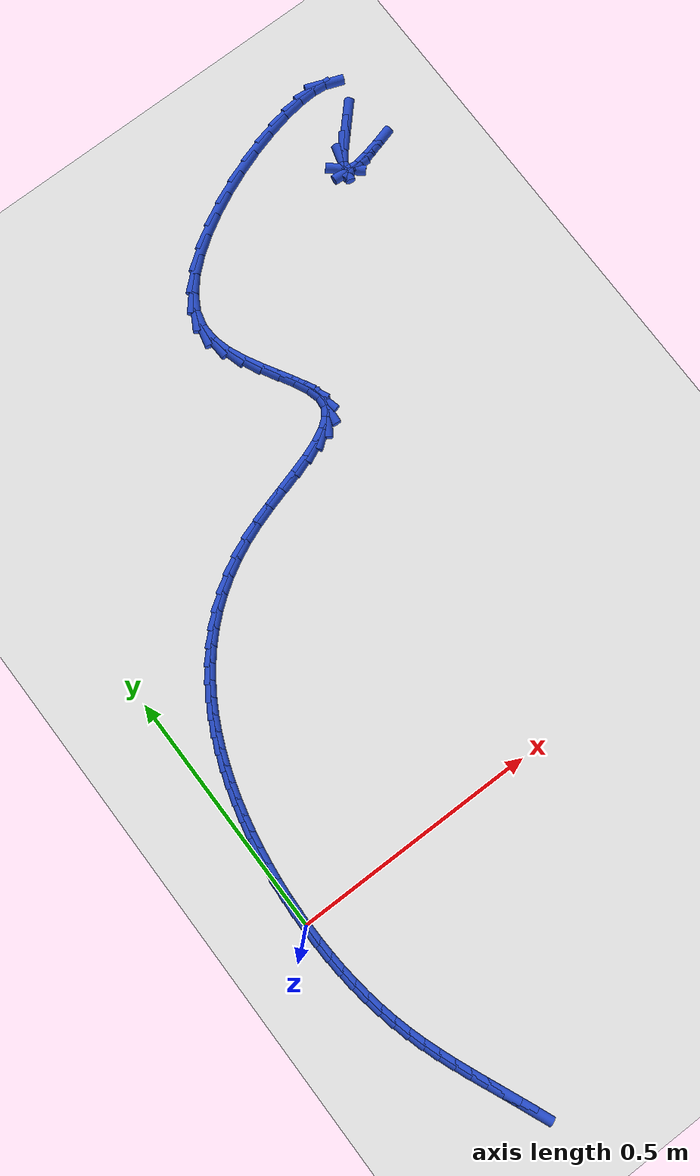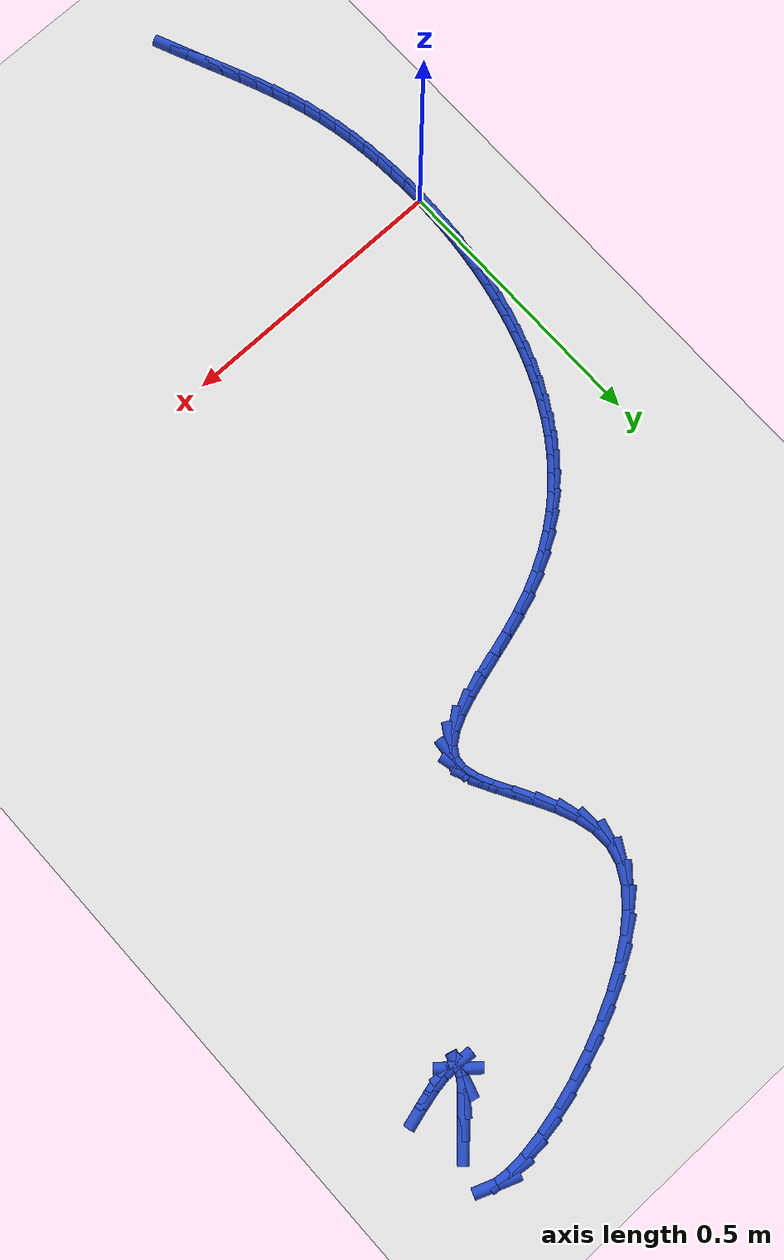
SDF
<sdf version="1.6">
 <world name="default">
  <model name="ground_plane">
   <static>1</static>
   <link name="link">
    <collision name="collision">
     <geometry><plane><normal>0 0 1</normal><size>100 100</size></plane></geometry>
     <surface><friction><ode><mu>100</mu><mu2>50</mu2></ode></friction></surface>
    </collision>
    <visual name="visual">
     <cast_shadows>0</cast_shadows>
     <geometry><plane><normal>0 0 1</normal><size>100 100</size></plane></geometry>
     <material>
      <script><uri>file://media/materials/scripts/gazebo.material</uri><name>Gazebo/WhiteGlow</name></script>
     </material>
    </visual>
   </link>
  </model>
  <model name="line">
   <link name="link_0">
    <pose>0.0 -3.469446951953614e-17 0.01 0 1.57 1.551347622708045</pose>
    <collision name="collision">
     <geometry><cylinder><radius>0.01</radius><length>0.08</length></cylinder></geometry>
    </collision>
    <visual name="visual">
     <material>
      <script><name>Gazebo/Blue</name><uri>file://media/materials/scripts/gazebo.material</uri></script>
     </material>
     <geometry><cylinder><radius>0.01</radius><length>0.08</length></cylinder></geometry>
    </visual>
   </link>
   <link name="link_1">
    <pose>0.0006310632778626028 0.032443483434008775 0.01 0 1.57 1.5214623332307498</pose>
    <collision name="collision">
     <geometry><cylinder><radius>0.01</radius><length>0.08</length></cylinder></geometry>
    </collision>
    <visual name="visual">
     <material>
      <script><name>Gazebo/Blue</name><uri>file://media/materials/scripts/gazebo.material</uri></script>
     </material>
     <geometry><cylinder><radius>0.01</radius><length>0.08</length></cylinder></geometry>
    </visual>
   </link>
   <link name="link_2">
    <pose>0.00222877448602239 0.06480280992995505 0.01 0 1.57 1.490794480789097</pose>
    <collision name="collision">
     <geometry><cylinder><radius>0.01</radius><length>0.08</length></cylinder></geometry>
    </collision>
    <visual name="visual">
     <material>
      <script><name>Gazebo/Blue</name><uri>file://media/materials/scripts/gazebo.material</uri></script>
     </material>
     <geometry><cylinder><radius>0.01</radius><length>0.08</length></cylinder></geometry>
    </visual>
   </link>
   <link name="link_3">
    <pose>0.004814420883808927 0.0970536625192309 0.01 0 1.57 1.4593335294211989</pose>
    <collision name="collision">
     <geometry><cylinder><radius>0.01</radius><length>0.08</length></cylinder></geometry>
    </collision>
    <visual name="visual">
     <material>
      <script><name>Gazebo/Blue</name><uri>file://media/materials/scripts/gazebo.material</uri></script>
     </material>
     <geometry><cylinder><radius>0.01</radius><length>0.08</length></cylinder></geometry>
    </visual>
   </link>
   <link name="link_4">
    <pose>0.00840928973055177 0.12917172423322837 0.01 0 1.57 1.4270744777898414</pose>
    <collision name="collision">
     <geometry><cylinder><radius>0.01</radius><length>0.08</length></cylinder></geometry>
    </collision>
    <visual name="visual">
     <material>
      <script><name>Gazebo/Blue</name><uri>file://media/materials/scripts/gazebo.material</uri></script>
     </material>
     <geometry><cylinder><radius>0.01</radius><length>0.08</length></cylinder></geometry>
    </visual>
   </link>
   <link name="link_5">
    <pose>0.013034668285580472 0.16113267810333953 0.01 0 1.57 1.394018565833373</pose>
    <collision name="collision">
     <geometry><cylinder><radius>0.01</radius><length>0.08</length></cylinder></geometry>
    </collision>
    <visual name="visual">
     <material>
      <script><name>Gazebo/Blue</name><uri>file://media/materials/scripts/gazebo.material</uri></script>
     </material>
     <geometry><cylinder><radius>0.01</radius><length>0.08</length></cylinder></geometry>
    </visual>
   </link>
   <link name="link_6">
    <pose>0.018711843808224587 0.19291220716095636 0.01 0 1.57 1.3601739711808627</pose>
    <collision name="collision">
     <geometry><cylinder><radius>0.01</radius><length>0.08</length></cylinder></geometry>
    </collision>
    <visual name="visual">
     <material>
      <script><name>Gazebo/Blue</name><uri>file://media/materials/scripts/gazebo.material</uri></script>
     </material>
     <geometry><cylinder><radius>0.01</radius><length>0.08</length></cylinder></geometry>
    </visual>
   </link>
   <link name="link_7">
    <pose>0.025462103557813684 0.22448599443747105 0.01 0 1.57 1.3255514020256949</pose>
    <collision name="collision">
     <geometry><cylinder><radius>0.01</radius><length>0.08</length></cylinder></geometry>
    </collision>
    <visual name="visual">
     <material>
      <script><name>Gazebo/Blue</name><uri>file://media/materials/scripts/gazebo.material</uri></script>
     </material>
     <geometry><cylinder><radius>0.01</radius><length>0.08</length></cylinder></geometry>
    </visual>
   </link>
   <link name="link_8">
    <pose>0.03330686267905719 0.2558295598063921 0.01 0 1.57 1.2893873009036945</pose>
    <collision name="collision">
     <geometry><cylinder><radius>0.01</radius><length>0.08</length></cylinder></geometry>
    </collision>
    <visual name="visual">
     <material>
      <script><name>Gazebo/Blue</name><uri>file://media/materials/scripts/gazebo.material</uri></script>
     </material>
     <geometry><cylinder><radius>0.01</radius><length>0.08</length></cylinder></geometry>
    </visual>
   </link>
   <link name="link_9">
    <pose>0.04228690338637428 0.28689371437386546 0.01 0 1.57 1.2499902859856358</pose>
    <collision name="collision">
     <geometry><cylinder><radius>0.01</radius><length>0.08</length></cylinder></geometry>
    </collision>
    <visual name="visual">
     <material>
      <script><name>Gazebo/Blue</name><uri>file://media/materials/scripts/gazebo.material</uri></script>
     </material>
     <geometry><cylinder><radius>0.01</radius><length>0.08</length></cylinder></geometry>
    </visual>
   </link>
   <link name="link_10">
    <pose>0.0524829219104767 0.31757834640856647 0.01 0 1.57 1.2070098560567881</pose>
    <collision name="collision">
     <geometry><cylinder><radius>0.01</radius><length>0.08</length></cylinder></geometry>
    </collision>
    <visual name="visual">
     <material>
      <script><name>Gazebo/Blue</name><uri>file://media/materials/scripts/gazebo.material</uri></script>
     </material>
     <geometry><cylinder><radius>0.01</radius><length>0.08</length></cylinder></geometry>
    </visual>
   </link>
   <link name="link_11">
    <pose>0.06398053857860247 0.34777706195076147 0.01 0 1.57 1.1603143816222603</pose>
    <collision name="collision">
     <geometry><cylinder><radius>0.01</radius><length>0.08</length></cylinder></geometry>
    </collision>
    <visual name="visual">
     <material>
      <script><name>Gazebo/Blue</name><uri>file://media/materials/scripts/gazebo.material</uri></script>
     </material>
     <geometry><cylinder><radius>0.01</radius><length>0.08</length></cylinder></geometry>
    </visual>
   </link>
   <link name="link_12">
    <pose>0.07686537371798967 0.37738346704071657 0.01 0 1.57 1.109813871606569</pose>
    <collision name="collision">
     <geometry><cylinder><radius>0.01</radius><length>0.08</length></cylinder></geometry>
    </collision>
    <visual name="visual">
     <material>
      <script><name>Gazebo/Blue</name><uri>file://media/materials/scripts/gazebo.material</uri></script>
     </material>
     <geometry><cylinder><radius>0.01</radius><length>0.08</length></cylinder></geometry>
    </visual>
   </link>
   <link name="link_13">
    <pose>0.09122304765587627 0.4062911677186979 0.01 0 1.57 1.0554810074321803</pose>
    <collision name="collision">
     <geometry><cylinder><radius>0.01</radius><length>0.08</length></cylinder></geometry>
    </collision>
    <visual name="visual">
     <material>
      <script><name>Gazebo/Blue</name><uri>file://media/materials/scripts/gazebo.material</uri></script>
     </material>
     <geometry><cylinder><radius>0.01</radius><length>0.08</length></cylinder></geometry>
    </visual>
   </link>
   <link name="link_14">
    <pose>0.10713918071950027 0.4343937700249714 0.01 0 1.57 0.9973742962797819</pose>
    <collision name="collision">
     <geometry><cylinder><radius>0.01</radius><length>0.08</length></cylinder></geometry>
    </collision>
    <visual name="visual">
     <material>
      <script><name>Gazebo/Blue</name><uri>file://media/materials/scripts/gazebo.material</uri></script>
     </material>
     <geometry><cylinder><radius>0.01</radius><length>0.08</length></cylinder></geometry>
    </visual>
   </link>
   <link name="link_15">
    <pose>0.12469939323609969 0.46158487999980335 0.01 0 1.57 0.9356611636134483</pose>
    <collision name="collision">
     <geometry><cylinder><radius>0.01</radius><length>0.08</length></cylinder></geometry>
    </collision>
    <visual name="visual">
     <material>
      <script><name>Gazebo/Blue</name><uri>file://media/materials/scripts/gazebo.material</uri></script>
     </material>
     <geometry><cylinder><radius>0.01</radius><length>0.08</length></cylinder></geometry>
    </visual>
   </link>
   <link name="link_16">
    <pose>0.1439893055329126 0.48775810368345984 0.01 0 1.57 0.8706375805706945</pose>
    <collision name="collision">
     <geometry><cylinder><radius>0.01</radius><length>0.08</length></cylinder></geometry>
    </collision>
    <visual name="visual">
     <material>
      <script><name>Gazebo/Blue</name><uri>file://media/materials/scripts/gazebo.material</uri></script>
     </material>
     <geometry><cylinder><radius>0.01</radius><length>0.08</length></cylinder></geometry>
    </visual>
   </link>
   <link name="link_17">
    <pose>0.165094537937177 0.5128070471162071 0.01 0 1.57 0.8027398537066995</pose>
    <collision name="collision">
     <geometry><cylinder><radius>0.01</radius><length>0.08</length></cylinder></geometry>
    </collision>
    <visual name="visual">
     <material>
      <script><name>Gazebo/Blue</name><uri>file://media/materials/scripts/gazebo.material</uri></script>
     </material>
     <geometry><cylinder><radius>0.01</radius><length>0.08</length></cylinder></geometry>
    </visual>
   </link>
   <link name="link_18">
    <pose>0.18810071077613086 0.536625316338311 0.01 0 1.57 0.7325440356069635</pose>
    <collision name="collision">
     <geometry><cylinder><radius>0.01</radius><length>0.08</length></cylinder></geometry>
    </collision>
    <visual name="visual">
     <material>
      <script><name>Gazebo/Blue</name><uri>file://media/materials/scripts/gazebo.material</uri></script>
     </material>
     <geometry><cylinder><radius>0.01</radius><length>0.08</length></cylinder></geometry>
    </visual>
   </link>
   <link name="link_19">
    <pose>0.21309344437701214 0.5591065173900378 0.01 0 1.57 0.6607495702812148</pose>
    <collision name="collision">
     <geometry><cylinder><radius>0.01</radius><length>0.08</length></cylinder></geometry>
    </collision>
    <visual name="visual">
     <material>
      <script><name>Gazebo/Blue</name><uri>file://media/materials/scripts/gazebo.material</uri></script>
     </material>
     <geometry><cylinder><radius>0.01</radius><length>0.08</length></cylinder></geometry>
    </visual>
   </link>
   <link name="link_20">
    <pose>0.240158359067059 0.5801442563116536 0.01 0 1.57 0.588146442139677</pose>
    <collision name="collision">
     <geometry><cylinder><radius>0.01</radius><length>0.08</length></cylinder></geometry>
    </collision>
    <visual name="visual">
     <material>
      <script><name>Gazebo/Blue</name><uri>file://media/materials/scripts/gazebo.material</uri></script>
     </material>
     <geometry><cylinder><radius>0.01</radius><length>0.08</length></cylinder></geometry>
    </visual>
   </link>
   <link name="link_21">
    <pose>0.2693810751735095 0.5996321391434246 0.01 0 1.57 0.5155687649617055</pose>
    <collision name="collision">
     <geometry><cylinder><radius>0.01</radius><length>0.08</length></cylinder></geometry>
    </collision>
    <visual name="visual">
     <material>
      <script><name>Gazebo/Blue</name><uri>file://media/materials/scripts/gazebo.material</uri></script>
     </material>
     <geometry><cylinder><radius>0.01</radius><length>0.08</length></cylinder></geometry>
    </visual>
   </link>
   <link name="link_22">
    <pose>0.3008472130236013 0.6174637719256166 0.01 0 1.57 0.44384126703161364</pose>
    <collision name="collision">
     <geometry><cylinder><radius>0.01</radius><length>0.08</length></cylinder></geometry>
    </collision>
    <visual name="visual">
     <material>
      <script><name>Gazebo/Blue</name><uri>file://media/materials/scripts/gazebo.material</uri></script>
     </material>
     <geometry><cylinder><radius>0.01</radius><length>0.08</length></cylinder></geometry>
    </visual>
   </link>
   <link name="link_23">
    <pose>0.3346423929445729 0.6335327606984963 0.01 0 1.57 0.3737866147968108</pose>
    <collision name="collision">
     <geometry><cylinder><radius>0.01</radius><length>0.08</length></cylinder></geometry>
    </collision>
    <visual name="visual">
     <material>
      <script><name>Gazebo/Blue</name><uri>file://media/materials/scripts/gazebo.material</uri></script>
     </material>
     <geometry><cylinder><radius>0.01</radius><length>0.08</length></cylinder></geometry>
    </visual>
   </link>
   <link name="link_24">
    <pose>0.3708493988317719 0.6477340845346052 0.01 0 1.57 0.3148942566973578</pose>
    <collision name="collision">
     <geometry><cylinder><radius>0.01</radius><length>0.08</length></cylinder></geometry>
    </collision>
    <visual name="visual">
     <material>
      <script><name>Gazebo/Blue</name><uri>file://media/materials/scripts/gazebo.material</uri></script>
     </material>
     <geometry><cylinder><radius>0.01</radius><length>0.08</length></cylinder></geometry>
    </visual>
   </link>
   <link name="link_25">
    <pose>0.4090845612367298 0.6601885186902318 0.01 0 1.57 0.28279651600928557</pose>
    <collision name="collision">
     <geometry><cylinder><radius>0.01</radius><length>0.08</length></cylinder></geometry>
    </collision>
    <visual name="visual">
     <material>
      <script><name>Gazebo/Blue</name><uri>file://media/materials/scripts/gazebo.material</uri></script>
     </material>
     <geometry><cylinder><radius>0.01</radius><length>0.08</length></cylinder></geometry>
    </visual>
   </link>
   <link name="link_26">
    <pose>0.44798301336738394 0.6714918068587505 0.01 0 1.57 0.27659774655328795</pose>
    <collision name="collision">
     <geometry><cylinder><radius>0.01</radius><length>0.08</length></cylinder></geometry>
    </collision>
    <visual name="visual">
     <material>
      <script><name>Gazebo/Blue</name><uri>file://media/materials/scripts/gazebo.material</uri></script>
     </material>
     <geometry><cylinder><radius>0.01</radius><length>0.08</length></cylinder></geometry>
    </visual>
   </link>
   <link name="link_27">
    <pose>0.48605588649348863 0.6822997183819521 0.01 0 1.57 0.2976227414882241</pose>
    <collision name="collision">
     <geometry><cylinder><radius>0.01</radius><length>0.08</length></cylinder></geometry>
    </collision>
    <visual name="visual">
     <material>
      <script><name>Gazebo/Blue</name><uri>file://media/materials/scripts/gazebo.material</uri></script>
     </material>
     <geometry><cylinder><radius>0.01</radius><length>0.08</length></cylinder></geometry>
    </visual>
   </link>
   <link name="link_28">
    <pose>0.5218143118847985 0.6932680226016271 0.01 0 1.57 0.3533080853779067</pose>
    <collision name="collision">
     <geometry><cylinder><radius>0.01</radius><length>0.08</length></cylinder></geometry>
    </collision>
    <visual name="visual">
     <material>
      <script><name>Gazebo/Blue</name><uri>file://media/materials/scripts/gazebo.material</uri></script>
     </material>
     <geometry><cylinder><radius>0.01</radius><length>0.08</length></cylinder></geometry>
    </visual>
   </link>
   <link name="link_29">
    <pose>0.5537694208110685 0.705052488859567 0.01 0 1.57 0.46139283071344844</pose>
    <collision name="collision">
     <geometry><cylinder><radius>0.01</radius><length>0.08</length></cylinder></geometry>
    </collision>
    <visual name="visual">
     <material>
      <script><name>Gazebo/Blue</name><uri>file://media/materials/scripts/gazebo.material</uri></script>
     </material>
     <geometry><cylinder><radius>0.01</radius><length>0.08</length></cylinder></geometry>
    </visual>
   </link>
   <link name="link_30">
    <pose>0.580432344542053 0.7183088864975622 0.01 0 1.57 0.658544431414146</pose>
    <collision name="collision">
     <geometry><cylinder><radius>0.01</radius><length>0.08</length></cylinder></geometry>
    </collision>
    <visual name="visual">
     <material>
      <script><name>Gazebo/Blue</name><uri>file://media/materials/scripts/gazebo.material</uri></script>
     </material>
     <geometry><cylinder><radius>0.01</radius><length>0.08</length></cylinder></geometry>
    </visual>
   </link>
   <link name="link_31">
    <pose>0.6003142143475064 0.7336929848574038 0.01 0 1.57 1.0020806790082801</pose>
    <collision name="collision">
     <geometry><cylinder><radius>0.01</radius><length>0.08</length></cylinder></geometry>
    </collision>
    <visual name="visual">
     <material>
      <script><name>Gazebo/Blue</name><uri>file://media/materials/scripts/gazebo.material</uri></script>
     </material>
     <geometry><cylinder><radius>0.01</radius><length>0.08</length></cylinder></geometry>
    </visual>
   </link>
   <link name="link_32">
    <pose>0.6119261614971837 0.7518605532808826 0.01 0 1.57 1.4758298179137297</pose>
    <collision name="collision">
     <geometry><cylinder><radius>0.01</radius><length>0.08</length></cylinder></geometry>
    </collision>
    <visual name="visual">
     <material>
      <script><name>Gazebo/Blue</name><uri>file://media/materials/scripts/gazebo.material</uri></script>
     </material>
     <geometry><cylinder><radius>0.01</radius><length>0.08</length></cylinder></geometry>
    </visual>
   </link>
   <link name="link_33">
    <pose>0.6139784881230772 0.7734066036426206 0.01 0 1.57 -1.312101001811424</pose>
    <collision name="collision">
     <geometry><cylinder><radius>0.01</radius><length>0.08</length></cylinder></geometry>
    </collision>
    <visual name="visual">
     <material>
      <script><name>Gazebo/Blue</name><uri>file://media/materials/scripts/gazebo.material</uri></script>
     </material>
     <geometry><cylinder><radius>0.01</radius><length>0.08</length></cylinder></geometry>
    </visual>
   </link>
   <link name="link_34">
    <pose>0.6074048576649154 0.7982479070337151 0.01 0 1.57 -1.134745780756237</pose>
    <collision name="collision">
     <geometry><cylinder><radius>0.01</radius><length>0.08</length></cylinder></geometry>
    </collision>
    <visual name="visual">
     <material>
      <script><name>Gazebo/Blue</name><uri>file://media/materials/scripts/gazebo.material</uri></script>
     </material>
     <geometry><cylinder><radius>0.01</radius><length>0.08</length></cylinder></geometry>
    </visual>
   </link>
   <link name="link_35">
    <pose>0.5945308500287122 0.8258766276622478 0.01 0 1.57 -1.058211550674028</pose>
    <collision name="collision">
     <geometry><cylinder><radius>0.01</radius><length>0.08</length></cylinder></geometry>
    </collision>
    <visual name="visual">
     <material>
      <script><name>Gazebo/Blue</name><uri>file://media/materials/scripts/gazebo.material</uri></script>
     </material>
     <geometry><cylinder><radius>0.01</radius><length>0.08</length></cylinder></geometry>
    </visual>
   </link>
   <link name="link_36">
    <pose>0.5777034065088035 0.8557784134023594 0.01 0 1.57 -1.043539684821418</pose>
    <collision name="collision">
     <geometry><cylinder><radius>0.01</radius><length>0.08</length></cylinder></geometry>
    </collision>
    <visual name="visual">
     <material>
      <script><name>Gazebo/Blue</name><uri>file://media/materials/scripts/gazebo.material</uri></script>
     </material>
     <geometry><cylinder><radius>0.01</radius><length>0.08</length></cylinder></geometry>
    </visual>
   </link>
   <link name="link_37">
    <pose>0.5592694683995242 0.8874389121281911 0.01 0 1.57 -1.0774325841149117</pose>
    <collision name="collision">
     <geometry><cylinder><radius>0.01</radius><length>0.08</length></cylinder></geometry>
    </collision>
    <visual name="visual">
     <material>
      <script><name>Gazebo/Blue</name><uri>file://media/materials/scripts/gazebo.material</uri></script>
     </material>
     <geometry><cylinder><radius>0.01</radius><length>0.08</length></cylinder></geometry>
    </visual>
   </link>
   <link name="link_38">
    <pose>0.5415759769952098 0.9203437717138842 0.01 0 1.57 -1.161112958504543</pose>
    <collision name="collision">
     <geometry><cylinder><radius>0.01</radius><length>0.08</length></cylinder></geometry>
    </collision>
    <visual name="visual">
     <material>
      <script><name>Gazebo/Blue</name><uri>file://media/materials/scripts/gazebo.material</uri></script>
     </material>
     <geometry><cylinder><radius>0.01</radius><length>0.08</length></cylinder></geometry>
    </visual>
   </link>
   <link name="link_39">
    <pose>0.5269698735901955 0.9539786400335792 0.01 0 1.57 -1.3061999585849446</pose>
    <collision name="collision">
     <geometry><cylinder><radius>0.01</radius><length>0.08</length></cylinder></geometry>
    </collision>
    <visual name="visual">
     <material>
      <script><name>Gazebo/Blue</name><uri>file://media/materials/scripts/gazebo.material</uri></script>
     </material>
     <geometry><cylinder><radius>0.01</radius><length>0.08</length></cylinder></geometry>
    </visual>
   </link>
   <link name="link_40">
    <pose>0.5177980994788169 0.9878291649614179 0.01 0 1.57 -1.5293765807955133</pose>
    <collision name="collision">
     <geometry><cylinder><radius>0.01</radius><length>0.08</length></cylinder></geometry>
    </collision>
    <visual name="visual">
     <material>
      <script><name>Gazebo/Blue</name><uri>file://media/materials/scripts/gazebo.material</uri></script>
     </material>
     <geometry><cylinder><radius>0.01</radius><length>0.08</length></cylinder></geometry>
    </visual>
   </link>
   <link name="link_41">
    <pose>0.5164075959554093 1.0213809943715408 0.01 0 1.57 1.319639766445815</pose>
    <collision name="collision">
     <geometry><cylinder><radius>0.01</radius><length>0.08</length></cylinder></geometry>
    </collision>
    <visual name="visual">
     <material>
      <script><name>Gazebo/Blue</name><uri>file://media/materials/scripts/gazebo.material</uri></script>
     </material>
     <geometry><cylinder><radius>0.01</radius><length>0.08</length></cylinder></geometry>
    </visual>
   </link>
   <link name="link_42">
    <pose>0.5248132688190369 1.0541421649048626 0.01 0 1.57 1.0565491156961648</pose>
    <collision name="collision">
     <geometry><cylinder><radius>0.01</radius><length>0.08</length></cylinder></geometry>
    </collision>
    <visual name="visual">
     <material>
      <script><name>Gazebo/Blue</name><uri>file://media/materials/scripts/gazebo.material</uri></script>
     </material>
     <geometry><cylinder><radius>0.01</radius><length>0.08</length></cylinder></geometry>
    </visual>
   </link>
   <link name="link_43">
    <pose>0.5426862968222728 1.0857787479876455 0.01 0 1.57 0.8606946901196671</pose>
    <collision name="collision">
     <geometry><cylinder><radius>0.01</radius><length>0.08</length></cylinder></geometry>
    </collision>
    <visual name="visual">
     <material>
      <script><name>Gazebo/Blue</name><uri>file://media/materials/scripts/gazebo.material</uri></script>
     </material>
     <geometry><cylinder><radius>0.01</radius><length>0.08</length></cylinder></geometry>
    </visual>
   </link>
   <link name="link_44">
    <pose>0.5686890252021204 1.1160248395152679 0.01 0 1.57 0.7170650592184831</pose>
    <collision name="collision">
     <geometry><cylinder><radius>0.01</radius><length>0.08</length></cylinder></geometry>
    </collision>
    <visual name="visual">
     <material>
      <script><name>Gazebo/Blue</name><uri>file://media/materials/scripts/gazebo.material</uri></script>
     </material>
     <geometry><cylinder><radius>0.01</radius><length>0.08</length></cylinder></geometry>
    </visual>
   </link>
   <link name="link_45">
    <pose>0.6014798675906796 1.1446148004866477 0.01 0 1.57 0.609004369966287</pose>
    <collision name="collision">
     <geometry><cylinder><radius>0.01</radius><length>0.08</length></cylinder></geometry>
    </collision>
    <visual name="visual">
     <material>
      <script><name>Gazebo/Blue</name><uri>file://media/materials/scripts/gazebo.material</uri></script>
     </material>
     <geometry><cylinder><radius>0.01</radius><length>0.08</length></cylinder></geometry>
    </visual>
   </link>
   <link name="link_46">
    <pose>0.6397172376200493 1.1712829919007028 0.01 0 1.57 0.5242085539335282</pose>
    <collision name="collision">
     <geometry><cylinder><radius>0.01</radius><length>0.08</length></cylinder></geometry>
    </collision>
    <visual name="visual">
     <material>
      <script><name>Gazebo/Blue</name><uri>file://media/materials/scripts/gazebo.material</uri></script>
     </material>
     <geometry><cylinder><radius>0.01</radius><length>0.08</length></cylinder></geometry>
    </visual>
   </link>
   <link name="link_47">
    <pose>0.6820595489223289 1.1957637747563508 0.01 0 1.57 0.4542911078282176</pose>
    <collision name="collision">
     <geometry><cylinder><radius>0.01</radius><length>0.08</length></cylinder></geometry>
    </collision>
    <visual name="visual">
     <material>
      <script><name>Gazebo/Blue</name><uri>file://media/materials/scripts/gazebo.material</uri></script>
     </material>
     <geometry><cylinder><radius>0.01</radius><length>0.08</length></cylinder></geometry>
    </visual>
   </link>
   <link name="link_48">
    <pose>0.7271652151296177 1.2177915100525087 0.01 0 1.57 0.39337315590906513</pose>
    <collision name="collision">
     <geometry><cylinder><radius>0.01</radius><length>0.08</length></cylinder></geometry>
    </collision>
    <visual name="visual">
     <material>
      <script><name>Gazebo/Blue</name><uri>file://media/materials/scripts/gazebo.material</uri></script>
     </material>
     <geometry><cylinder><radius>0.01</radius><length>0.08</length></cylinder></geometry>
    </visual>
   </link>
   <link name="link_49">
    <pose>0.7736926498740148 1.2371005587880954 0.01 0 1.57 0.3369052658944641</pose>
    <collision name="collision">
     <geometry><cylinder><radius>0.01</radius><length>0.08</length></cylinder></geometry>
    </collision>
    <visual name="visual">
     <material>
      <script><name>Gazebo/Blue</name><uri>file://media/materials/scripts/gazebo.material</uri></script>
     </material>
     <geometry><cylinder><radius>0.01</radius><length>0.08</length></cylinder></geometry>
    </visual>
   </link>
   <link name="link_50">
    <pose>0.8203002667876199 1.2534252819620282 0.01 0 1.57 0.28071801904414695</pose>
    <collision name="collision">
     <geometry><cylinder><radius>0.01</radius><length>0.08</length></cylinder></geometry>
    </collision>
    <visual name="visual">
     <material>
      <script><name>Gazebo/Blue</name><uri>file://media/materials/scripts/gazebo.material</uri></script>
     </material>
     <geometry><cylinder><radius>0.01</radius><length>0.08</length></cylinder></geometry>
    </visual>
   </link>
   <link name="link_51">
    <pose>0.8656464795025323 1.2665000405732247 0.01 0 1.57 0.2200209540827201</pose>
    <collision name="collision">
     <geometry><cylinder><radius>0.01</radius><length>0.08</length></cylinder></geometry>
    </collision>
    <visual name="visual">
     <material>
      <script><name>Gazebo/Blue</name><uri>file://media/materials/scripts/gazebo.material</uri></script>
     </material>
     <geometry><cylinder><radius>0.01</radius><length>0.08</length></cylinder></geometry>
    </visual>
   </link>
   <link name="link_52">
    <pose>0.9083897016508508 1.2760591956206029 0.01 0 1.57 0.14783400576240263</pose>
    <collision name="collision">
     <geometry><cylinder><radius>0.01</radius><length>0.08</length></cylinder></geometry>
    </collision>
    <visual name="visual">
     <material>
      <script><name>Gazebo/Blue</name><uri>file://media/materials/scripts/gazebo.material</uri></script>
     </material>
     <geometry><cylinder><radius>0.01</radius><length>0.08</length></cylinder></geometry>
    </visual>
   </link>
   <link name="link_53">
    <pose>0.9471883468646749 1.2818371081030806 0.01 0 1.57 0.051607454191733446</pose>
    <collision name="collision">
     <geometry><cylinder><radius>0.01</radius><length>0.08</length></cylinder></geometry>
    </collision>
    <visual name="visual">
     <material>
      <script><name>Gazebo/Blue</name><uri>file://media/materials/scripts/gazebo.material</uri></script>
     </material>
     <geometry><cylinder><radius>0.01</radius><length>0.08</length></cylinder></geometry>
    </visual>
   </link>
   <link name="link_54">
    <pose>0.9807008287761048 1.283568139019576 0.01 0 1.57 -0.0957271763182718</pose>
    <collision name="collision">
     <geometry><cylinder><radius>0.01</radius><length>0.08</length></cylinder></geometry>
    </collision>
    <visual name="visual">
     <material>
      <script><name>Gazebo/Blue</name><uri>file://media/materials/scripts/gazebo.material</uri></script>
     </material>
     <geometry><cylinder><radius>0.01</radius><length>0.08</length></cylinder></geometry>
    </visual>
   </link>
   <link name="link_55">
    <pose>1.0075855610172384 1.2809866493690059 0.01 0 1.57 -0.3618435693640887</pose>
    <collision name="collision">
     <geometry><cylinder><radius>0.01</radius><length>0.08</length></cylinder></geometry>
    </collision>
    <visual name="visual">
     <material>
      <script><name>Gazebo/Blue</name><uri>file://media/materials/scripts/gazebo.material</uri></script>
     </material>
     <geometry><cylinder><radius>0.01</radius><length>0.08</length></cylinder></geometry>
    </visual>
   </link>
   <link name="link_60">
    <pose>1.0004826008522436 1.1963133273875095 0.01 0 1.57 0.815732766385355</pose>
    <collision name="collision">
     <geometry><cylinder><radius>0.01</radius><length>0.08</length></cylinder></geometry>
    </collision>
    <visual name="visual">
     <material>
      <script><name>Gazebo/Blue</name><uri>file://media/materials/scripts/gazebo.material</uri></script>
     </material>
     <geometry><cylinder><radius>0.01</radius><length>0.08</length></cylinder></geometry>
    </visual>
   </link>
   <link name="link_61">
    <pose>0.9752900682114598 1.1695440708440654 0.01 0 1.57 0.8201089405374283</pose>
    <collision name="collision">
     <geometry><cylinder><radius>0.01</radius><length>0.08</length></cylinder></geometry>
    </collision>
    <visual name="visual">
     <material>
      <script><name>Gazebo/Blue</name><uri>file://media/materials/scripts/gazebo.material</uri></script>
     </material>
     <geometry><cylinder><radius>0.01</radius><length>0.08</length></cylinder></geometry>
    </visual>
   </link>
   <link name="link_62">
    <pose>0.9523799879213143 1.144985660304029 0.01 0 1.57 0.9139286673673777</pose>
    <collision name="collision">
     <geometry><cylinder><radius>0.01</radius><length>0.08</length></cylinder></geometry>
    </collision>
    <visual name="visual">
     <material>
      <script><name>Gazebo/Blue</name><uri>file://media/materials/scripts/gazebo.material</uri></script>
     </material>
     <geometry><cylinder><radius>0.01</radius><length>0.08</length></cylinder></geometry>
    </visual>
   </link>
   <link name="link_63">
    <pose>0.937415770065643 1.1255792840652181 0.01 0 1.57 1.2947535767993004</pose>
    <collision name="collision">
     <geometry><cylinder><radius>0.01</radius><length>0.08</length></cylinder></geometry>
    </collision>
    <visual name="visual">
     <material>
      <script><name>Gazebo/Blue</name><uri>file://media/materials/scripts/gazebo.material</uri></script>
     </material>
     <geometry><cylinder><radius>0.01</radius><length>0.08</length></cylinder></geometry>
    </visual>
   </link>
   <link name="link_64">
    <pose>0.933868107428264 1.1130555304981562 0.01 0 1.57 -0.7180120632977532</pose>
    <collision name="collision">
     <geometry><cylinder><radius>0.01</radius><length>0.08</length></cylinder></geometry>
    </collision>
    <visual name="visual">
     <material>
      <script><name>Gazebo/Blue</name><uri>file://media/materials/scripts/gazebo.material</uri></script>
     </material>
     <geometry><cylinder><radius>0.01</radius><length>0.08</length></cylinder></geometry>
    </visual>
   </link>
   <link name="link_65">
    <pose>0.94100245315866 1.1068232738173547 0.01 0 1.57 -0.04781191547302565</pose>
    <collision name="collision">
     <geometry><cylinder><radius>0.01</radius><length>0.08</length></cylinder></geometry>
    </collision>
    <visual name="visual">
     <material>
      <script><name>Gazebo/Blue</name><uri>file://media/materials/scripts/gazebo.material</uri></script>
     </material>
     <geometry><cylinder><radius>0.01</radius><length>0.08</length></cylinder></geometry>
    </visual>
   </link>
   <link name="link_66">
    <pose>0.9576084676548963 1.1060287029060842 0.01 0 1.57 0.1512174634362945</pose>
    <collision name="collision">
     <geometry><cylinder><radius>0.01</radius><length>0.08</length></cylinder></geometry>
    </collision>
    <visual name="visual">
     <material>
      <script><name>Gazebo/Blue</name><uri>file://media/materials/scripts/gazebo.material</uri></script>
     </material>
     <geometry><cylinder><radius>0.01</radius><length>0.08</length></cylinder></geometry>
    </visual>
   </link>
   <link name="link_67">
    <pose>0.9824758113150382 1.1098180066476155 0.01 0 1.57 0.23136291057843697</pose>
    <collision name="collision">
     <geometry><cylinder><radius>0.01</radius><length>0.08</length></cylinder></geometry>
    </collision>
    <visual name="visual">
     <material>
      <script><name>Gazebo/Blue</name><uri>file://media/materials/scripts/gazebo.material</uri></script>
     </material>
     <geometry><cylinder><radius>0.01</radius><length>0.08</length></cylinder></geometry>
    </visual>
   </link>
   <link name="link_68">
    <pose>1.014394144537151 1.1173373739252188 0.01 0 1.57 0.26865916935724266</pose>
    <collision name="collision">
     <geometry><cylinder><radius>0.01</radius><length>0.08</length></cylinder></geometry>
    </collision>
    <visual name="visual">
     <material>
      <script><name>Gazebo/Blue</name><uri>file://media/materials/scripts/gazebo.material</uri></script>
     </material>
     <geometry><cylinder><radius>0.01</radius><length>0.08</length></cylinder></geometry>
    </visual>
   </link>
   <link name="link_234">
    <pose>0.12953503485137444 -0.49560547177087266 0.01 0 1.57 -1.1686125478004052</pose>
    <collision name="collision">
     <geometry><cylinder><radius>0.01</radius><length>0.08</length></cylinder></geometry>
    </collision>
    <visual name="visual">
     <material>
      <script><name>Gazebo/Blue</name><uri>file://media/materials/scripts/gazebo.material</uri></script>
     </material>
     <geometry><cylinder><radius>0.01</radius><length>0.08</length></cylinder></geometry>
    </visual>
   </link>
   <link name="link_235">
    <pose>0.1166779579472919 -0.4653798217298188 0.01 0 1.57 -1.1602437211852117</pose>
    <collision name="collision">
     <geometry><cylinder><radius>0.01</radius><length>0.08</length></cylinder></geometry>
    </collision>
    <visual name="visual">
     <material>
      <script><name>Gazebo/Blue</name><uri>file://media/materials/scripts/gazebo.material</uri></script>
     </material>
     <geometry><cylinder><radius>0.01</radius><length>0.08</length></cylinder></geometry>
    </visual>
   </link>
   <link name="link_236">
    <pose>0.10364257085543373 -0.43543326593084175 0.01 0 1.57 -1.1588860470300575</pose>
    <collision name="collision">
     <geometry><cylinder><radius>0.01</radius><length>0.08</length></cylinder></geometry>
    </collision>
    <visual name="visual">
     <material>
      <script><name>Gazebo/Blue</name><uri>file://media/materials/scripts/gazebo.material</uri></script>
     </material>
     <geometry><cylinder><radius>0.01</radius><length>0.08</length></cylinder></geometry>
    </visual>
   </link>
   <link name="link_237">
    <pose>0.09063568353708668 -0.40566269770387586 0.01 0 1.57 -1.1648484618117683</pose>
    <collision name="collision">
     <geometry><cylinder><radius>0.01</radius><length>0.08</length></cylinder></geometry>
    </collision>
    <visual name="visual">
     <material>
      <script><name>Gazebo/Blue</name><uri>file://media/materials/scripts/gazebo.material</uri></script>
     </material>
     <geometry><cylinder><radius>0.01</radius><length>0.08</length></cylinder></geometry>
    </visual>
   </link>
   <link name="link_238">
    <pose>0.07786944666809267 -0.375961483106023 0.01 0 1.57 -1.1782307790158262</pose>
    <collision name="collision">
     <geometry><cylinder><radius>0.01</radius><length>0.08</length></cylinder></geometry>
    </collision>
    <visual name="visual">
     <material>
      <script><name>Gazebo/Blue</name><uri>file://media/materials/scripts/gazebo.material</uri></script>
     </material>
     <geometry><cylinder><radius>0.01</radius><length>0.08</length></cylinder></geometry>
    </visual>
   </link>
   <link name="link_239">
    <pose>0.06555601092429356 -0.346222988194385 0.01 0 1.57 -1.1991045399645974</pose>
    <collision name="collision">
     <geometry><cylinder><radius>0.01</radius><length>0.08</length></cylinder></geometry>
    </collision>
    <visual name="visual">
     <material>
      <script><name>Gazebo/Blue</name><uri>file://media/materials/scripts/gazebo.material</uri></script>
     </material>
     <geometry><cylinder><radius>0.01</radius><length>0.08</length></cylinder></geometry>
    </visual>
   </link>
   <link name="link_240">
    <pose>0.05390752698153149 -0.31634057902606416 0.01 0 1.57 -1.2274895431951456</pose>
    <collision name="collision">
     <geometry><cylinder><radius>0.01</radius><length>0.08</length></cylinder></geometry>
    </collision>
    <visual name="visual">
     <material>
      <script><name>Gazebo/Blue</name><uri>file://media/materials/scripts/gazebo.material</uri></script>
     </material>
     <geometry><cylinder><radius>0.01</radius><length>0.08</length></cylinder></geometry>
    </visual>
   </link>
   <link name="link_241">
    <pose>0.04313614551564769 -0.2862076216581606 0.01 0 1.57 -1.2633178454945981</pose>
    <collision name="collision">
     <geometry><cylinder><radius>0.01</radius><length>0.08</length></cylinder></geometry>
    </collision>
    <visual name="visual">
     <material>
      <script><name>Gazebo/Blue</name><uri>file://media/materials/scripts/gazebo.material</uri></script>
     </material>
     <geometry><cylinder><radius>0.01</radius><length>0.08</length></cylinder></geometry>
    </visual>
   </link>
   <link name="link_242">
    <pose>0.033454017202484344 -0.25571748214777673 0.01 0 1.57 -1.3056680060637738</pose>
    <collision name="collision">
     <geometry><cylinder><radius>0.01</radius><length>0.08</length></cylinder></geometry>
    </collision>
    <visual name="visual">
     <material>
      <script><name>Gazebo/Blue</name><uri>file://media/materials/scripts/gazebo.material</uri></script>
     </material>
     <geometry><cylinder><radius>0.01</radius><length>0.08</length></cylinder></geometry>
    </visual>
   </link>
   <link name="link_243">
    <pose>0.02505307054641323 -0.22477708575864824 0.01 0 1.57 -1.348491719494567</pose>
    <collision name="collision">
     <geometry><cylinder><radius>0.01</radius><length>0.08</length></cylinder></geometry>
    </collision>
    <visual name="visual">
     <material>
      <script><name>Gazebo/Blue</name><uri>file://media/materials/scripts/gazebo.material</uri></script>
     </material>
     <geometry><cylinder><radius>0.01</radius><length>0.08</length></cylinder></geometry>
    </visual>
   </link>
   <link name="link_244">
    <pose>0.01796131604629413 -0.19340326672798888 0.01 0 1.57 -1.3890003105162634</pose>
    <collision name="collision">
     <geometry><cylinder><radius>0.01</radius><length>0.08</length></cylinder></geometry>
    </collision>
    <visual name="visual">
     <material>
      <script><name>Gazebo/Blue</name><uri>file://media/materials/scripts/gazebo.material</uri></script>
     </material>
     <geometry><cylinder><radius>0.01</radius><length>0.08</length></cylinder></geometry>
    </visual>
   </link>
   <link name="link_245">
    <pose>0.012127227944445965 -0.16166618929958104 0.01 0 1.57 -1.4272846359333171</pose>
    <collision name="collision">
     <geometry><cylinder><radius>0.01</radius><length>0.08</length></cylinder></geometry>
    </collision>
    <visual name="visual">
     <material>
      <script><name>Gazebo/Blue</name><uri>file://media/materials/scripts/gazebo.material</uri></script>
     </material>
     <geometry><cylinder><radius>0.01</radius><length>0.08</length></cylinder></geometry>
    </visual>
   </link>
   <link name="link_246">
    <pose>0.007498755286318195 -0.12963636986795868 0.01 0 1.57 -1.4634680934219917</pose>
    <collision name="collision">
     <geometry><cylinder><radius>0.01</radius><length>0.08</length></cylinder></geometry>
    </collision>
    <visual name="visual">
     <material>
      <script><name>Gazebo/Blue</name><uri>file://media/materials/scripts/gazebo.material</uri></script>
     </material>
     <geometry><cylinder><radius>0.01</radius><length>0.08</length></cylinder></geometry>
    </visual>
   </link>
   <link name="link_247">
    <pose>0.004023847117360269 -0.09738432482765562 0.01 0 1.57 -1.497682452258823</pose>
    <collision name="collision">
     <geometry><cylinder><radius>0.01</radius><length>0.08</length></cylinder></geometry>
    </collision>
    <visual name="visual">
     <material>
      <script><name>Gazebo/Blue</name><uri>file://media/materials/scripts/gazebo.material</uri></script>
     </material>
     <geometry><cylinder><radius>0.01</radius><length>0.08</length></cylinder></geometry>
    </visual>
   </link>
   <link name="link_248">
    <pose>0.0016504524830216253 -0.06498057057320558 0.01 0 1.57 -1.530063621638079</pose>
    <collision name="collision">
     <geometry><cylinder><radius>0.01</radius><length>0.08</length></cylinder></geometry>
    </collision>
    <visual name="visual">
     <material>
      <script><name>Gazebo/Blue</name><uri>file://media/materials/scripts/gazebo.material</uri></script>
     </material>
     <geometry><cylinder><radius>0.01</radius><length>0.08</length></cylinder></geometry>
    </visual>
   </link>
   <link name="link_249">
    <pose>0.0003265204287517232 -0.03249562349914242 0.01 0 1.57 -1.5607485294237222</pose>
    <collision name="collision">
     <geometry><cylinder><radius>0.01</radius><length>0.08</length></cylinder></geometry>
    </collision>
    <visual name="visual">
     <material>
      <script><name>Gazebo/Blue</name><uri>file://media/materials/scripts/gazebo.material</uri></script>
     </material>
     <geometry><cylinder><radius>0.01</radius><length>0.08</length></cylinder></geometry>
    </visual>
   </link>
   <link name="link_250">
    <pose>6.071532165918825e-18 -2.7755575615628914e-17 0.01 0 1.57 1.5517197051095282</pose>
    <collision name="collision">
     <geometry><cylinder><radius>0.01</radius><length>0.08</length></cylinder></geometry>
    </collision>
    <visual name="visual">
     <material>
      <script><name>Gazebo/Blue</name><uri>file://media/materials/scripts/gazebo.material</uri></script>
     </material>
     <geometry><cylinder><radius>0.01</radius><length>0.08</length></cylinder></geometry>
    </visual>
   </link>
   <link name="link_251">
    <pose>0.0006188402422159225 0.03243578352968783 0.01 0 1.57 1.524022543674503</pose>
    <collision name="collision">
     <geometry><cylinder><radius>0.01</radius><length>0.08</length></cylinder></geometry>
    </collision>
    <visual name="visual">
     <material>
      <script><name>Gazebo/Blue</name><uri>file://media/materials/scripts/gazebo.material</uri></script>
     </material>
     <geometry><cylinder><radius>0.01</radius><length>0.08</length></cylinder></geometry>
    </visual>
   </link>
   <link name="link_252">
    <pose>0.0021309902008489236 0.06474121069538731 0.01 0 1.57 1.537892692707389</pose>
    <collision name="collision">
     <geometry><cylinder><radius>0.01</radius><length>0.08</length></cylinder></geometry>
    </collision>
    <visual name="visual">
     <material>
      <script><name>Gazebo/Blue</name><uri>file://media/materials/scripts/gazebo.material</uri></script>
     </material>
     <geometry><cylinder><radius>0.01</radius><length>0.08</length></cylinder></geometry>
    </visual>
   </link>
  </model>
 </world>
</sdf>
